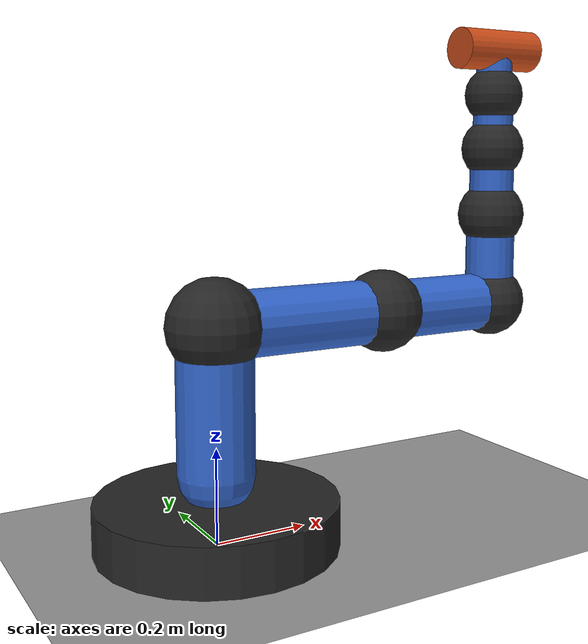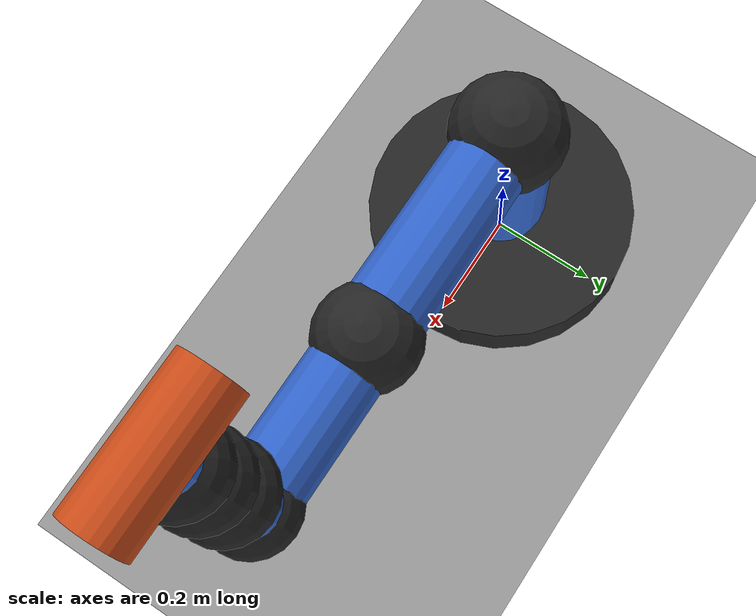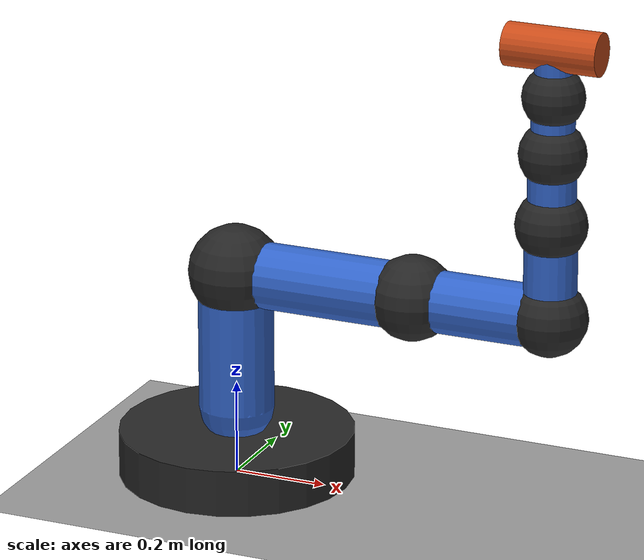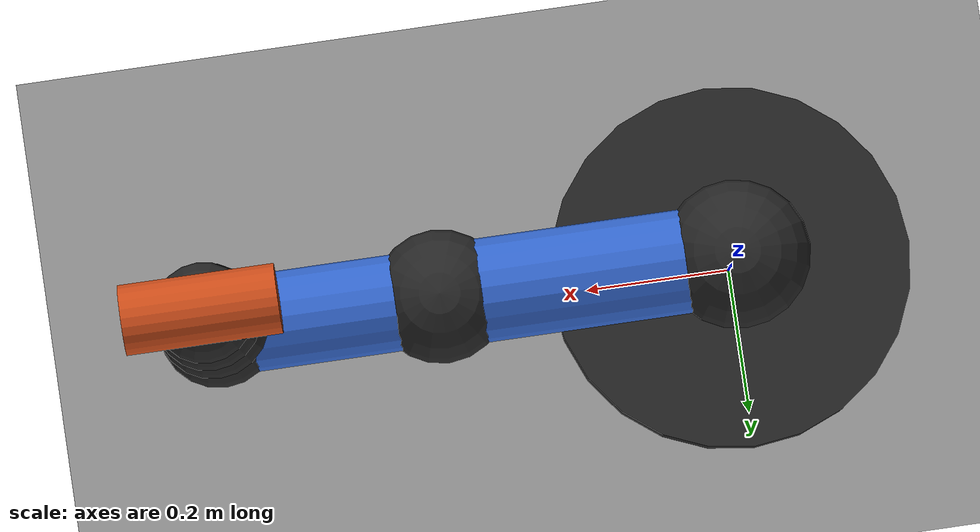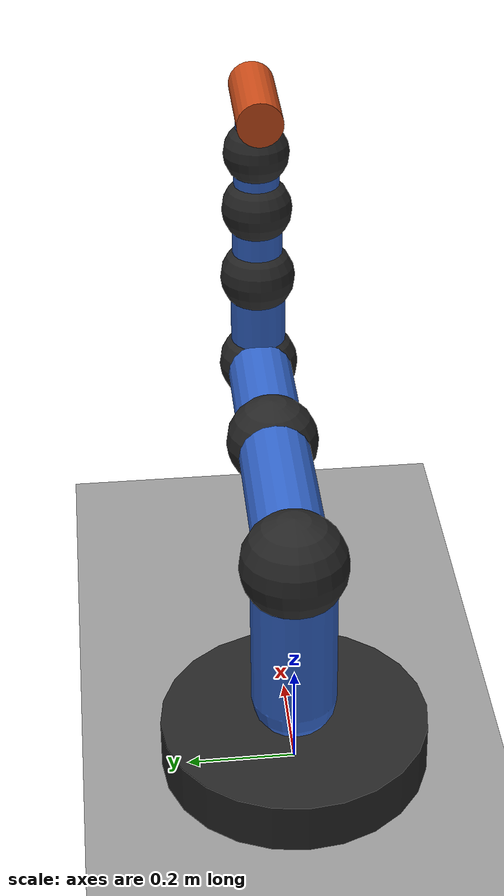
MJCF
<mujoco model="7DOF_FRANKA_Manipulator">

    <compiler angle="radian" autolimits="true"/>

    <option timestep="0.002"
            gravity="0 0 -9.81"/>

    <visual>
        <global offwidth="1280"
                offheight="720"/>
        <quality shadowsize="2048"/>
        <headlight diffuse="0.8 0.8 0.8"
                    ambient="0.3 0.3 0.3"/>
    </visual>

    <!-- MATERIALS                                         -->

    <asset>

        <material name="robot_material"
                  rgba="0.2 0.4 0.8 1"/>

        <material name="joint_material"
                  rgba="0.15 0.15 0.15 1"/>

        <material name="tool_material"
                  rgba="0.8 0.3 0.1 1"/>

        <material name="ground_material"
                  rgba="0.6 0.6 0.6 1"/>

    </asset>

    <!-- WORLD                                              -->

    <worldbody>

        <geom name="ground"
              type="plane"
              size="3 3 0.1"
              material="ground_material"/>

        <!-- BASE                                               -->

        <body name="base"
              pos="0 0 0.05">

            <geom name="base_geom"
                  type="cylinder"
                  size="0.25 0.05"
                  material="joint_material"/>

            <inertial pos="0 0 0"
                      mass="5"
                      diaginertia="0.05 0.05 0.05"/>

            <!-- JOINT 1 - BASE YAW                                -->

            <body name="link1"
                  pos="0 0 0.10">

                <joint name="joint1"
                       type="hinge"
                       axis="0 0 1"
                       range="-3.1416 3.1416"/>

                <geom name="link1_geom"
                      type="capsule"
                      fromto="0 0 0 0 0 0.30"
                      size="0.08"
                      material="robot_material"/>

                <inertial pos="0 0 0.15"
                          mass="1.5"
                          diaginertia="0.02 0.02 0.01"/>

                <!-- JOINT 2 - SHOULDER                                -->

                <body name="link2"
                      pos="0 0 0.30">

                    <joint name="joint2"
                           type="hinge"
                           axis="0 1 0"
                           range="-2.5 2.5"/>

                    <geom name="joint2_visual"
                          type="sphere"
                          size="0.10"
                          material="joint_material"/>

                    <geom name="link2_geom"
                          type="capsule"
                          fromto="0 0 0 0.40 0 0"
                          size="0.07"
                          material="robot_material"/>

                    <inertial pos="0.20 0 0"
                              mass="1.2"
                              diaginertia="0.02 0.02 0.01"/>

                    <!-- JOINT 3 - ELBOW                                  -->

                    <body name="link3"
                          pos="0.40 0 0">

                        <joint name="joint3"
                               type="hinge"
                               axis="0 1 0"
                               range="-2.5 2.5"/>

                        <geom name="joint3_visual"
                              type="sphere"
                              size="0.09"
                              material="joint_material"/>

                        <geom name="link3_geom"
                              type="capsule"
                              fromto="0 0 0 0.30 0 0"
                              size="0.065"
                              material="robot_material"/>

                        <inertial pos="0.15 0 0"
                                  mass="0.9"
                                  diaginertia="0.015 0.015 0.008"/>

                        <!-- JOINT 4 - WRIST YAW                              -->

                        <body name="link4"
                              pos="0.30 0 0">

                            <joint name="joint4"
                                   type="hinge"
                                   axis="1 0 0"
                                   range="-3.1416 3.1416"/>

                            <geom name="joint4_visual"
                                  type="sphere"
                                  size="0.08"
                                  material="joint_material"/>

                            <geom name="link4_geom"
                                  type="capsule"
                                  fromto="0 0 0 0 0 0.20"
                                  size="0.055"
                                  material="robot_material"/>

                            <inertial pos="0 0 0.10"
                                      mass="0.6"
                                      diaginertia="0.01 0.01 0.008"/>

                            <!-- JOINT 5 - WRIST PITCH                            -->

                            <body name="link5"
                                  pos="0 0 0.20">

                                <joint name="joint5"
                                       type="hinge"
                                       axis="0 1 0"
                                       range="-2.5 2.5"/>

                                <geom name="joint5_visual"
                                      type="sphere"
                                      size="0.075"
                                      material="joint_material"/>

                                <geom name="link5_geom"
                                      type="capsule"
                                      fromto="0 0 0 0 0 0.15"
                                      size="0.05"
                                      material="robot_material"/>

                                <inertial pos="0 0 0.075"
                                          mass="0.4"
                                          diaginertia="0.006 0.006 0.004"/>

                                <!-- JOINT 6 - WRIST ROLL                            -->

                                <body name="link6"
                                      pos="0 0 0.15">

                                    <joint name="joint6"
                                           type="hinge"
                                           axis="1 0 0"
                                           range="-3.1416 3.1416"/>

                                    <geom name="joint6_visual"
                                          type="sphere"
                                          size="0.07"
                                          material="joint_material"/>

                                    <geom name="link6_geom"
                                          type="capsule"
                                          fromto="0 0 0 0 0 0.12"
                                          size="0.045"
                                          material="robot_material"/>

                                    <inertial pos="0 0 0.06"
                                              mass="0.3"
                                              diaginertia="0.004 0.004 0.003"/>

                                    <!-- JOINT 7 - TOOL ROTATION                       -->

                                    <body name="link7"
                                          pos="0 0 0.12">

                                        <joint name="joint7"
                                               type="hinge"
                                               axis="0 0 1"
                                               range="-3.1416 3.1416"/>

                                        <geom name="joint7_visual"
                                              type="sphere"
                                              size="0.065"
                                              material="joint_material"/>

                                        <geom name="link7_geom"
                                              type="capsule"
                                              fromto="0 0 0 0 0 0.10"
                                              size="0.04"
                                              material="robot_material"/>

                                        <inertial pos="0 0 0.05"
                                                  mass="0.25"
                                                  diaginertia="0.003 0.003 0.002"/>

                                        <!-- END EFFECTOR                              -->

                                        <body name="end_effector"
                                              pos="0 0 0.10">

                                            <geom name="tool"
                                                  type="cylinder"
                                                  size="0.045 0.10"
                                                  material="tool_material"
                                                  euler="0 1.5708 0"/>

                                            <inertial pos="0 0 0"
                                                      mass="0.2"
                                                      diaginertia="0.002 0.002 0.002"/>

                                            <site name="tool_site"
                                                  pos="0 0 0"
                                                  size="0.025"
                                                  rgba="1 0 0 1"/>

                                        </body>

                                    </body>

                                </body>

                            </body>

                        </body>

                    </body>

                </body>

            </body>

        </body>

    </worldbody>

    <!-- POSITION ACTUATORS                                -->

    <actuator>

        <position name="motor1"
                  joint="joint1"
                  kp="30"
                  kv="5"
                  ctrlrange="-3.1416 3.1416"/>

        <position name="motor2"
                  joint="joint2"
                  kp="30"
                  kv="6"
                  ctrlrange="-2.5 2.5"/>

        <position name="motor3"
                  joint="joint3"
                  kp="30"
                  kv="6"
                  ctrlrange="-2.5 2.5"/>

        <position name="motor4"
                  joint="joint4"
                  kp="20"
                  kv="4"
                  ctrlrange="-3.1416 3.1416"/>

        <position name="motor5"
                  joint="joint5"
                  kp="20"
                  kv="4"
                  ctrlrange="-2.5 2.5"/>

        <position name="motor6"
                  joint="joint6"
                  kp="15"
                  kv="3"
                  ctrlrange="-3.1416 3.1416"/>

        <position name="motor7"
                  joint="joint7"
                  kp="15"
                  kv="3"
                  ctrlrange="-3.1416 3.1416"/>

    </actuator>

    <!-- SENSORS                                            -->

    <sensor>

        <jointpos name="q1" joint="joint1"/>
        <jointpos name="q2" joint="joint2"/>
        <jointpos name="q3" joint="joint3"/>
        <jointpos name="q4" joint="joint4"/>
        <jointpos name="q5" joint="joint5"/>
        <jointpos name="q6" joint="joint6"/>
        <jointpos name="q7" joint="joint7"/>

        <framepos name="end_effector_position"
                  objtype="site"
                  objname="tool_site"/>

    </sensor>

</mujoco>
